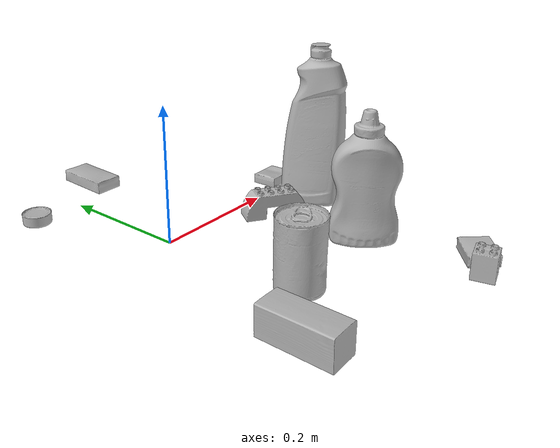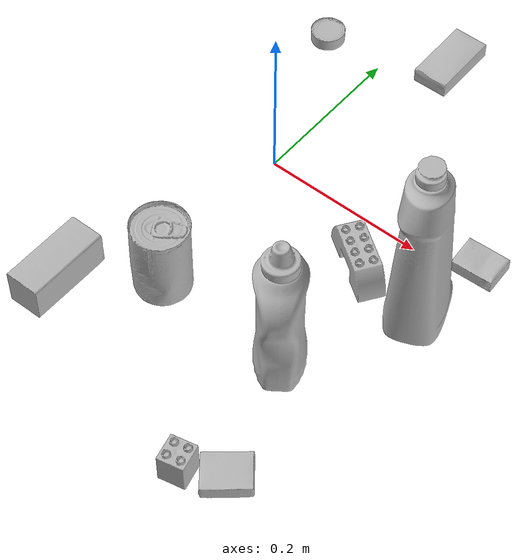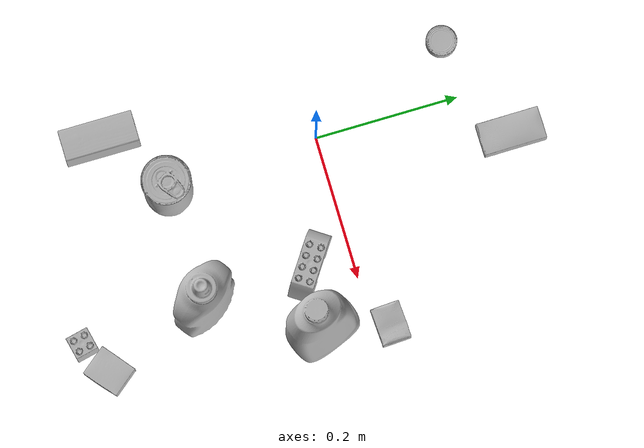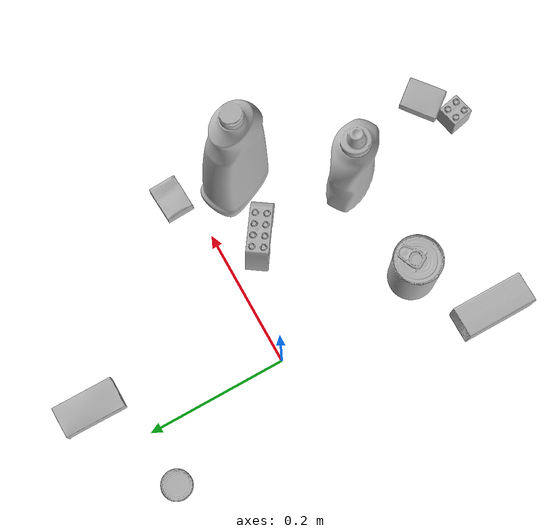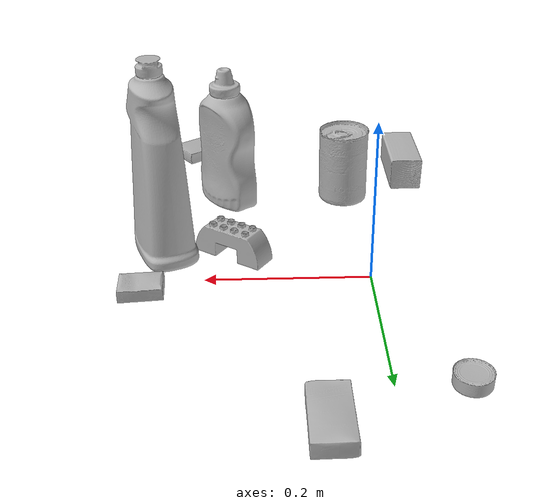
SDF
<sdf version="1.4">
  <world name="default">
    <light name="light1" type="point">
      <pose>0 0 1 0 0 0</pose>
      <diffuse>3 3 3 1</diffuse>
      <specular>3 3 3 1</specular>
    </light>
    <light name="light2" type="point">
      <pose>0 0.5 2 0 0 0</pose>
      <diffuse>1 1 1 1</diffuse>
      <specular>1 1 1 1</specular>
    </light>
    <light name="light3" type="point">
      <pose>0 0.5 2 0 0 0</pose>
      <diffuse>3 3 3 1</diffuse>
      <specular>3 3 3 1</specular>
    </light>
    <scene>
      <ambient>0.7 0.7 0.7</ambient>
    </scene>
    <model name="bottle1">
      <link name="link_bottle1">
        <collision name="default">
          <geometry>
            <mesh>
              <uri>model://bleach_cleanser/collision_meshes/collision.obj</uri>
              <scale>1.0 1.0 1.0</scale>
            </mesh>
          </geometry>
          <surface>
            <friction>
              <ode>
                <mu>0.5</mu>
                <mu2>0.5</mu2>
              </ode>
            </friction>
          <contact>
        <ode>
            <max_vel>0</max_vel>
            <min_depth>0.0001</min_depth>
            <kp>1e8</kp>
        </ode>
    </contact></surface>
        </collision>
        <visual name="default">
          <geometry>
            <mesh>
              <uri>model://bleach_cleanser/visual_meshes/visual.dae</uri>
              <scale>1.0 1.0 1.0</scale>
            </mesh>
          </geometry>
        </visual>
        <inertial>
          <mass>0.7954697608947754</mass>
          <pose>0.00012193184375064448 0.0037838825955986977 -0.02442161552608013 -0.0738167061583634 0.000420116841178447 -0.006875049257496471</pose>
          <inertia>
            <ixx>0.003871667</ixx>
            <iyy>0.0036078263</iyy>
            <izz>0.00066195446</izz>
            <ixy>0</ixy>
            <ixz>0</ixz>
            <iyz>0</iyz>
          </inertia>
        </inertial>
      </link>
      <pose>0.252127081155777 -0.06681951880455017 0.12577229738235474 -0.0017451445814156029 0.0022694970771038993 -2.733993067123403</pose>
    </model>
    <model name="bottle2">
      <link name="link_bottle2">
        <collision name="default">
          <geometry>
            <mesh>
              <uri>model://mustard_bottle/collision_meshes/collision.obj</uri>
              <scale>1.0 1.0 1.0</scale>
            </mesh>
          </geometry>
          <surface>
            <friction>
              <ode>
                <mu>0.5</mu>
                <mu2>0.5</mu2>
              </ode>
            </friction>
          <contact>
        <ode>
            <max_vel>0</max_vel>
            <min_depth>0.0001</min_depth>
            <kp>1e8</kp>
        </ode>
    </contact></surface>
        </collision>
        <visual name="default">
          <geometry>
            <mesh>
              <uri>model://mustard_bottle/visual_meshes/visual.dae</uri>
              <scale>1.0 1.0 1.0</scale>
            </mesh>
          </geometry>
        </visual>
        <inertial>
          <mass>0.5118113160133362</mass>
          <pose>0.0005032453336752951 -0.00015647397958673537 -0.017475785687565804 0.0004182313596805905 0.000946575919178121 0.024853765212265823</pose>
          <inertia>
            <ixx>0.00142123</ixx>
            <iyy>0.0012470091</iyy>
            <izz>0.0003745659</izz>
            <ixy>0</ixy>
            <ixz>0</ixz>
            <iyz>0</iyz>
          </inertia>
        </inertial>
      </link>
      <pose>0.17561033368110657 -0.20738165080547333 0.09615199267864227 1.5167797029567907e-05 1.6689060488174757e-05 0.6140458402674644</pose>
    </model>
    <model name="toy1">
      <link name="link_toy1">
        <collision name="default">
          <geometry>
            <mesh>
              <uri>model://b_lego_duplo/collision_meshes/collision.obj</uri>
              <scale>1.0 1.0 1.0</scale>
            </mesh>
          </geometry>
          <surface>
            <friction>
              <ode>
                <mu>0.5</mu>
                <mu2>0.5</mu2>
              </ode>
            </friction>
          <contact>
        <ode>
            <max_vel>0</max_vel>
            <min_depth>0.0001</min_depth>
            <kp>1e8</kp>
        </ode>
    </contact></surface>
        </collision>
        <visual name="default">
          <geometry>
            <mesh>
              <uri>model://b_lego_duplo/visual_meshes/visual.dae</uri>
              <scale>1.0 1.0 1.0</scale>
            </mesh>
          </geometry>
        </visual>
        <inertial>
          <mass>0.04622781649231911</mass>
          <pose>-0.00011053043272113428 -9.152668098977301e-06 0.0019294294761493802 -0.037494565787594906 -0.026354503997733224 0.45188645636516256</pose>
          <inertia>
            <ixx>9.46087e-06</ixx>
            <iyy>9.524471e-06</iyy>
            <izz>8.429326e-06</izz>
            <ixy>0</ixy>
            <ixz>0</ixz>
            <iyz>0</iyz>
          </inertia>
        </inertial>
      </link>
      <pose>0.1847456991672516 -0.37952613830566406 0.021814929321408272 4.996797867426219e-05 -9.28281195968724e-05 0.22413635323937656</pose>
    </model>
    <model name="toy2">
      <link name="link_toy2">
        <collision name="default">
          <geometry>
            <mesh>
              <uri>model://e_lego_duplo/collision_meshes/collision.obj</uri>
              <scale>1.0 1.0 1.0</scale>
            </mesh>
          </geometry>
          <surface>
            <friction>
              <ode>
                <mu>0.5</mu>
                <mu2>0.5</mu2>
              </ode>
            </friction>
          <contact>
        <ode>
            <max_vel>0</max_vel>
            <min_depth>0.0001</min_depth>
            <kp>1e8</kp>
        </ode>
    </contact></surface>
        </collision>
        <visual name="default">
          <geometry>
            <mesh>
              <uri>model://e_lego_duplo/visual_meshes/visual.dae</uri>
              <scale>1.0 1.0 1.0</scale>
            </mesh>
          </geometry>
        </visual>
        <inertial>
          <mass>0.08809097856283188</mass>
          <pose>0.00032560486579313874 0.00023485404381062835 0.0019521467620506883 -0.022567425824888195 -6.82459351116558e-05 -0.007625145117383363</pose>
          <inertia>
            <ixx>1.836988e-05</ixx>
            <iyy>7.539474e-05</iyy>
            <izz>7.34193e-05</izz>
            <ixy>0</ixy>
            <ixz>0</ixz>
            <iyz>0</iyz>
          </inertia>
        </inertial>
      </link>
      <pose>0.16627876460552216 -0.057561688125133514 0.02180892787873745 3.952790029089764e-05 -1.1561516315019154e-05 2.546582359594488</pose>
    </model>
    <model name="can1">
      <link name="link_can1">
        <collision name="default">
          <geometry>
            <mesh>
              <uri>model://tomato_soup_can/collision_meshes/collision.obj</uri>
              <scale>1.0 1.0 1.0</scale>
            </mesh>
          </geometry>
          <surface>
            <friction>
              <ode>
                <mu>0.5</mu>
                <mu2>0.5</mu2>
              </ode>
            </friction>
          <contact>
        <ode>
            <max_vel>0</max_vel>
            <min_depth>0.0001</min_depth>
            <kp>1e8</kp>
        </ode>
    </contact></surface>
        </collision>
        <visual name="default">
          <geometry>
            <mesh>
              <uri>model://tomato_soup_can/visual_meshes/visual.dae</uri>
              <scale>1.0 1.0 1.0</scale>
            </mesh>
          </geometry>
        </visual>
        <inertial>
          <mass>0.4347945749759674</mass>
          <pose>0.0001265227037947625 0.00010805525380419567 -0.0017973979702219367 0.007020064127759274 0.0004229940757469139 -0.009903323281130803</pose>
          <inertia>
            <ixx>0.00047671542</ixx>
            <iyy>0.00047396024</iyy>
            <izz>0.00024707714</izz>
            <ixy>0</ixy>
            <ixz>0</ixz>
            <iyz>0</iyz>
          </inertia>
        </inertial>
      </link>
      <pose>0.01550857350230217 -0.2116064727306366 0.051274023950099945 -3.432564179290198e-07 -6.47867957677063e-07 1.8056443901836412</pose>
    </model>
    <model name="can2">
      <link name="link_can2">
        <collision name="default">
          <geometry>
            <mesh>
              <uri>model://tuna_fish_can/collision_meshes/collision.obj</uri>
              <scale>0.5 0.5 0.5</scale>
            </mesh>
          </geometry>
          <surface>
            <friction>
              <ode>
                <mu>0.5</mu>
                <mu2>0.5</mu2>
              </ode>
            </friction>
          <contact>
        <ode>
            <max_vel>0</max_vel>
            <min_depth>0.0001</min_depth>
            <kp>1e8</kp>
        </ode>
    </contact></surface>
        </collision>
        <visual name="default">
          <geometry>
            <mesh>
              <uri>model://tuna_fish_can/visual_meshes/visual.dae</uri>
              <scale>0.5 0.5 0.5</scale>
            </mesh>
          </geometry>
        </visual>
        <inertial>
          <mass>0.02951119653880596</mass>
          <pose>-2.0361847418826073e-05 -7.256335720740026e-06 -0.0005269026733003557 -0.0017944763161136105 0.00017161533088142807 0.2405366956082085</pose>
          <inertia>
            <ixx>3.989958e-06</ixx>
            <iyy>3.9733272e-06</iyy>
            <izz>6.827389e-06</izz>
            <ixy>0</ixy>
            <ixz>0</ixz>
            <iyz>0</iyz>
          </inertia>
        </inertial>
      </link>
      <pose>-0.07833455502986908 0.20080718398094177 0.008520003408193588 -1.9221989461741983e-08 -1.6554647883700254e-08 -2.9004463867464256</pose>
    </model>
    <model name="box1">
      <link name="link_box1">
        <collision name="default">
          <geometry>
            <mesh>
              <uri>model://sugar_box/collision_meshes/collision.obj</uri>
              <scale>0.5 0.5 0.5</scale>
            </mesh>
          </geometry>
          <surface>
            <friction>
              <ode>
                <mu>0.5</mu>
                <mu2>0.5</mu2>
              </ode>
            </friction>
          <contact>
        <ode>
            <max_vel>0</max_vel>
            <min_depth>0.0001</min_depth>
            <kp>1e8</kp>
        </ode>
    </contact></surface>
        </collision>
        <visual name="default">
          <geometry>
            <mesh>
              <uri>model://sugar_box/visual_meshes/visual.dae</uri>
              <scale>0.5 0.5 0.5</scale>
            </mesh>
          </geometry>
        </visual>
        <inertial>
          <mass>0.10932230949401855</mass>
          <pose>0.0005171863595023751 1.924554817378521e-05 -0.00018182402709499002 -0.00040462630024242077 0.0010506636385781449 0.0026153787888990553</pose>
          <inertia>
            <ixx>2.277176e-05</ixx>
            <iyy>7.3603005e-05</iyy>
            <izz>8.811158e-05</izz>
            <ixy>0</ixy>
            <ixz>0</ixz>
            <iyz>0</iyz>
          </inertia>
        </inertial>
      </link>
      <pose>0.06809385865926743 0.25495636463165283 0.011399302631616592 0.0007752215499324925 -0.023432452617902312 1.5689358374941789</pose>
    </model>
    <model name="box2">
      <link name="link_box2">
        <collision name="default">
          <geometry>
            <mesh>
              <uri>model://pudding_box/collision_meshes/collision.obj</uri>
              <scale>0.5 0.5 0.5</scale>
            </mesh>
          </geometry>
          <surface>
            <friction>
              <ode>
                <mu>0.5</mu>
                <mu2>0.5</mu2>
              </ode>
            </friction>
          <contact>
        <ode>
            <max_vel>0</max_vel>
            <min_depth>0.0001</min_depth>
            <kp>1e8</kp>
        </ode>
    </contact></surface>
        </collision>
        <visual name="default">
          <geometry>
            <mesh>
              <uri>model://pudding_box/visual_meshes/visual.dae</uri>
              <scale>0.5 0.5 0.5</scale>
            </mesh>
          </geometry>
        </visual>
        <inertial>
          <mass>0.061322033405303955</mass>
          <pose>0.00024474109522998333 0.00040339428232982755 -0.0002594413817860186 0.0052131013423229325 -0.006603797777692156 0.020079823300565562</pose>
          <inertia>
            <ixx>1.733035e-05</ixx>
            <iyy>1.1659984e-05</iyy>
            <izz>2.559279e-05</izz>
            <ixy>0</ixy>
            <ixz>0</ixz>
            <iyz>0</iyz>
          </inertia>
        </inertial>
      </link>
      <pose>0.22808413207530975 -0.3551512062549591 0.009862969629466534 0.022322805434200118 -0.011394323961694633 -0.8937724784302893</pose>
    </model>
    <model name="box3">
      <link name="link_box3">
        <collision name="default">
          <geometry>
            <mesh>
              <uri>model://cracker_box/collision_meshes/collision.obj</uri>
              <scale>0.25 0.25 0.25</scale>
            </mesh>
          </geometry>
          <surface>
            <friction>
              <ode>
                <mu>0.5</mu>
                <mu2>0.5</mu2>
              </ode>
            </friction>
          <contact>
        <ode>
            <max_vel>0</max_vel>
            <min_depth>0.0001</min_depth>
            <kp>1e8</kp>
        </ode>
    </contact></surface>
        </collision>
        <visual name="default">
          <geometry>
            <mesh>
              <uri>model://cracker_box/visual_meshes/visual.dae</uri>
              <scale>0.25 0.25 0.25</scale>
            </mesh>
          </geometry>
        </visual>
        <inertial>
          <mass>0.05027599632740021</mass>
          <pose>0.00023660380975343287 6.358561222441494e-05 -0.00042573834070935845 -0.0003162076618733006 -0.011106490531610344 0.00254679570085012</pose>
          <inertia>
            <ixx>7.992481e-06</ixx>
            <iyy>1.3197154e-05</iyy>
            <izz>1.8833553e-05</izz>
            <ixy>0</ixy>
            <ixz>0</ixz>
            <iyz>0</iyz>
          </inertia>
        </inertial>
      </link>
      <pose>0.2722979485988617 0.024358952417969704 0.009096029214560986 -0.014050090954699746 -0.005016384816803743 -3.090607788140891</pose>
    </model>
    <model name="box4">
      <link name="link_box4">
        <collision name="default">
          <geometry>
            <mesh>
              <uri>model://wood_block/collision_meshes/collision.obj</uri>
              <scale>0.5 0.5 0.5</scale>
            </mesh>
          </geometry>
          <surface>
            <friction>
              <ode>
                <mu>0.5</mu>
                <mu2>0.5</mu2>
              </ode>
            </friction>
          <contact>
        <ode>
            <max_vel>0</max_vel>
            <min_depth>0.0001</min_depth>
            <kp>1e8</kp>
        </ode>
    </contact></surface>
        </collision>
        <visual name="default">
          <geometry>
            <mesh>
              <uri>model://wood_block/visual_meshes/visual.dae</uri>
              <scale>0.5 0.5 0.5</scale>
            </mesh>
          </geometry>
        </visual>
        <inertial>
          <mass>0.30035653710365295</mass>
          <pose>-2.9066577553749084e-06 -0.000285404734313488 0.00013204291462898254 -0.05221128362191582 -0.005192695718477931 -0.0068613783725326285</pose>
          <inertia>
            <ixx>0.00010048062</ixx>
            <iyy>0.00031741828</iyy>
            <izz>0.00031623102</izz>
            <ixy>0</ixy>
            <ixz>0</ixz>
            <iyz>0</iyz>
          </inertia>
        </inertial>
      </link>
      <pose>-0.07788345962762833 -0.28147315979003906 0.022629255428910255 -0.005208577747409445 0.0057187624857030816 1.574024039505765</pose>
    </model>
  <physics type="ode">
      <max_contacts>50</max_contacts>
      <ode>
        <solver>
          <type>quick</type>
          <iters>75</iters>
        </solver>
        <constraints>
          <contact_max_correcting_vel>0</contact_max_correcting_vel>
          <contact_surface_layer>0</contact_surface_layer>
        </constraints>
      </ode>
    </physics></world>
</sdf>
